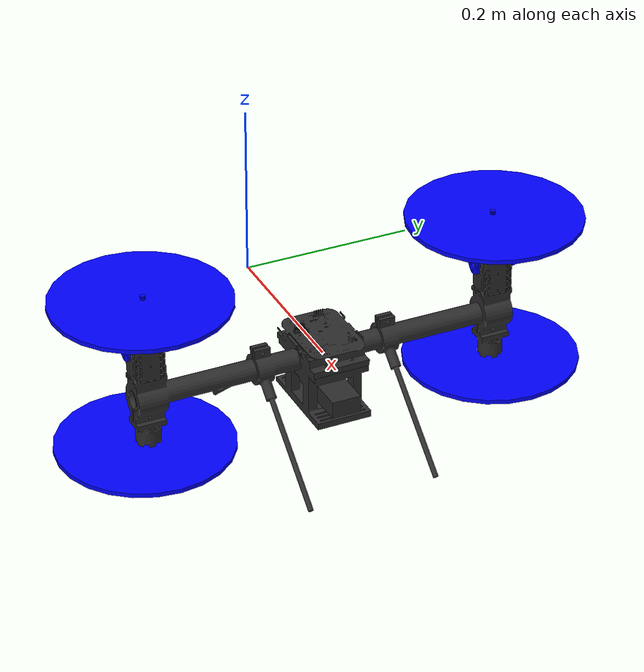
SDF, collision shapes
<?xml version="1.0" ?>
	<sdf version="1.6">
		<model name="bi_quad">
			<link name="base">
				<self_collide>false</self_collide>
				<pose>0.1993142586531725 0.0007662019443860381 0.007308524084885006 0.0 -0.0 0.0</pose>
				<inertial>
					<pose>0.0 0.0 0.0 0 0 0</pose>
					<mass>1.9525751921458985</mass>
					<inertia>
						<ixx>0.05420753138479871</ixx>
						<ixy>0.0001177924686405842</ixy>
						<ixz>6.837947817375323e-06</ixz>
						<iyy>0.0038734227472525962</iyy>
						<iyz>5.313259938331419e-05</iyz>
						<izz>0.05205338074297329</izz>
					</inertia>
				</inertial>
				<collision name="base_collision">
					<geometry>
						<mesh>
							<uri>model://bi_quad/meshes/CAD/base.stl</uri>
							<scale>0.001 0.001 0.001</scale>
						</mesh>
					</geometry>
				</collision>
				<visual name="base_visual">
					<geometry>
						<mesh>
							<uri>model://bi_quad/meshes/CAD/base.stl</uri>
							<scale>0.001 0.001 0.001</scale>
						</mesh>
					</geometry>
					<material>
						<ambient>.175 .175 .175 1.0</ambient>
						<diffuse>.175 .175 .175 1.0</diffuse>
					</material>
				</visual>
				<gravity>true</gravity>
	<velocity_decay/>
	<self_collide>0</self_collide>
		<sensor name="imu_sensor" type="imu">
			<always_on>1</always_on>
			<update_rate>250</update_rate>
			<imu>
			<angular_velocity>
			<x>
			<noise type="gaussian">
				<mean>0</mean>
				<stddev>0.0003394</stddev>
				<dynamic_bias_stddev>3.8785e-05</dynamic_bias_stddev>
				<dynamic_bias_correlation_time>1000</dynamic_bias_correlation_time>
			</noise>
			</x>
			<y>
			<noise type="gaussian">
				<mean>0</mean>
				<stddev>0.0003394</stddev>
				<dynamic_bias_stddev>3.8785e-05</dynamic_bias_stddev>
				<dynamic_bias_correlation_time>1000</dynamic_bias_correlation_time>
			</noise>
			</y>
			<z>
			<noise type="gaussian">
				<mean>0</mean>
				<stddev>0.0003394</stddev>
				<dynamic_bias_stddev>3.8785e-05</dynamic_bias_stddev>
				<dynamic_bias_correlation_time>1000</dynamic_bias_correlation_time>
			</noise>
			</z>
			</angular_velocity>
			<linear_acceleration>
			<x>
			<noise type="gaussian">
				<mean>0</mean>
				<stddev>0.004</stddev>
				<dynamic_bias_stddev>0.006</dynamic_bias_stddev>
				<dynamic_bias_correlation_time>300</dynamic_bias_correlation_time>
			</noise>
			</x>
			<y>
			<noise type="gaussian">
				<mean>0</mean>
				<stddev>0.004</stddev>
				<dynamic_bias_stddev>0.006</dynamic_bias_stddev>
				<dynamic_bias_correlation_time>300</dynamic_bias_correlation_time>
			</noise>
			</y>
			<z>
			<noise type="gaussian">
				<mean>0</mean>
				<stddev>0.004</stddev>
				<dynamic_bias_stddev>0.006</dynamic_bias_stddev>
				<dynamic_bias_correlation_time>300</dynamic_bias_correlation_time>
			</noise>
			</z>
			</linear_acceleration>
			</imu>
		</sensor>
		<sensor name="air_pressure_sensor" type="air_pressure">
			<always_on>1</always_on>
			<update_rate>50</update_rate>
			<air_pressure>
			<pressure>
			<noise type="gaussian">
			<mean>0</mean>
			<stddev>0.01</stddev>
			</noise>
			</pressure>
			</air_pressure>
		</sensor>
		<sensor name="navsat_sensor" type="navsat">
			<always_on>1</always_on>
			<update_rate>30</update_rate>
		</sensor>
			</link>

	<link name='prop1'>
	<pose>0.1970802016271777 0.210 0.11893393233816349 0.0 -0.0 0.0</pose>
	<inertial>
		<mass>0.016076923076923075</mass>
		<inertia>
		<ixx>3.8464910483993325e-07</ixx>
		<iyy>2.6115851691700804e-05</iyy>
		<izz>2.649858234714004e-05</izz>
		</inertia>
	</inertial>
	<collision name='prop1_collision'>
		<geometry>
		<cylinder>
		<length>0.005</length>
		<radius>0.1</radius>
		</cylinder>
		</geometry>
		<surface>
		<contact>
		<ode/>
		</contact>
		<friction>
		<ode/>
		</friction>
		</surface>
	</collision>
	<visual name='prop1_visual'>
		<geometry>
		<mesh>
		<scale>0.001 0.001 0.001</scale>
		<uri>model://bi_quad/meshes/CAD/Prop1.stl</uri>
		</mesh>
		</geometry>
		<material>
		<ambient>0 0 1 1.0</ambient>
		<diffuse>0 0 1 1.0</diffuse>
		</material>
	</visual>
	<gravity>true</gravity>
	<velocity_decay/>
	<self_collide>0</self_collide>
	</link>
	<joint name='prop1_joint' type='revolute'>
	<child>prop1</child>
	<parent>left_tilt</parent>
	<pose>-7.662759549274465e-08 -2.2088590501567753e-06 0.0011497181763331988 0 0 0</pose>
	<axis>
		<xyz>0 0 1</xyz>
		<limit>
		<lower>-1e+16</lower>
		<upper>1e+16</upper>
		</limit>
		<dynamics>
		<spring_reference>0</spring_reference>
		<spring_stiffness>0</spring_stiffness>
		</dynamics>
	</axis>
	</joint>

	<link name='prop2'>
      <pose>0.1970802016271777 -0.210 0.11893393233816349 0.0 -0.0 0.0</pose>
      <inertial>
        <mass>0.016076923076923075</mass>
        <inertia>
          <ixx>3.8464910483993325e-07</ixx>
          <iyy>2.6115851691700804e-05</iyy>
          <izz>2.649858234714004e-05</izz>
        </inertia>
      </inertial>
      <collision name='prop2_collision'>
        <geometry>
          <cylinder>
            <length>0.005</length>
            <radius>0.1</radius>
          </cylinder>
        </geometry>
        <surface>
          <contact>
            <ode/>
          </contact>
          <friction>
            <ode/>
          </friction>
        </surface>
      </collision>
      <visual name='prop2_visual'>
        <geometry>
          <mesh>
            <scale>0.001 0.001 0.001</scale>
            <uri>model://bi_quad/meshes/CAD/Prop2.stl</uri>
          </mesh>
        </geometry>
        <material>
          <ambient>0 0 1 1.0</ambient>
          <diffuse>0 0 1 1.0</diffuse>
        </material>
      </visual>
      <gravity>true</gravity>
      <velocity_decay/>
      <self_collide>0</self_collide>
    </link>
    <joint name='prop2_joint' type='revolute'>
      <child>prop2</child>
      <parent>right_tilt</parent>
      <pose>0.0018565808764078734 0.00021386973639528517 -0.00011891615606227482 0 0 0</pose>
      <axis>
        <xyz>0 0 1</xyz>
        <limit>
          <lower>-1e+16</lower>
          <upper>1e+16</upper>
        </limit>
        <dynamics>
          <spring_reference>0</spring_reference>
          <spring_stiffness>0</spring_stiffness>
        </dynamics>
      </axis>
    </joint>

    <link name='prop3'>
	<pose>0.1970802016271777 0.210 -0.06 0.0 -0.0 0.0</pose>
	<inertial>
		<mass>0.016076923076923075</mass>
		<inertia>
		<ixx>3.8464910483993325e-07</ixx>
		<iyy>2.6115851691700804e-05</iyy>
		<izz>2.649858234714004e-05</izz>
		</inertia>
	</inertial>
	<collision name='prop3_collision'>
		<geometry>
		<cylinder>
		<length>0.005</length>
		<radius>0.1</radius>
		</cylinder>
		</geometry>
		<surface>
		<contact>
		<ode/>
		</contact>
		<friction>
		<ode/>
		</friction>
		</surface>
	</collision>
	<visual name='prop3_visual'>
		<geometry>
		<mesh>
		<scale>0.001 0.001 0.001</scale>
		<uri>model://bi_quad/meshes/CAD/Prop1.stl</uri>
		</mesh>
		</geometry>
		<material>
		<ambient>0 0 1 1.0</ambient>
		<diffuse>0 0 1 1.0</diffuse>
		</material>
	</visual>
	<gravity>true</gravity>
	<velocity_decay/>
	<self_collide>0</self_collide>
	</link>
	<joint name='prop3_joint' type='revolute'>
	<child>prop3</child>
	<parent>base</parent>
	<pose>-7.662759549274465e-08 -2.2088590501567753e-06 0.0011497181763331988 0 0 0</pose>
	<axis>
		<xyz>0 0 1</xyz>
		<limit>
		<lower>-1e+16</lower>
		<upper>1e+16</upper>
		</limit>
		<dynamics>
		<spring_reference>0</spring_reference>
		<spring_stiffness>0</spring_stiffness>
		</dynamics>
	</axis>
	</joint>

	<link name='prop4'>
      <pose>0.1970802016271777 -0.210 -0.06 0.0 -0.0 0.0</pose>
      <inertial>
        <mass>0.016076923076923075</mass>
        <inertia>
          <ixx>3.8464910483993325e-07</ixx>
          <iyy>2.6115851691700804e-05</iyy>
          <izz>2.649858234714004e-05</izz>
        </inertia>
      </inertial>
      <collision name='prop4_collision'>
        <geometry>
          <cylinder>
            <length>0.005</length>
            <radius>0.1</radius>
          </cylinder>
        </geometry>
        <surface>
          <contact>
            <ode/>
          </contact>
          <friction>
            <ode/>
          </friction>
        </surface>
      </collision>
      <visual name='prop4_visual'>
        <geometry>
          <mesh>
            <scale>0.001 0.001 0.001</scale>
            <uri>model://bi_quad/meshes/CAD/Prop2.stl</uri>
          </mesh>
        </geometry>
        <material>
          <ambient>0 0 1 1.0</ambient>
          <diffuse>0 0 1 1.0</diffuse>
        </material>
      </visual>
      <gravity>true</gravity>
      <velocity_decay/>
      <self_collide>0</self_collide>
    </link>
    <joint name='prop4_joint' type='revolute'>
      <child>prop4</child>
      <parent>base</parent>
      <pose>0.0018565808764078734 0.00021386973639528517 -0.00011891615606227482 0 0 0</pose>
      <axis>
        <xyz>0 0 1</xyz>
        <limit>
          <lower>-1e+16</lower>
          <upper>1e+16</upper>
        </limit>
        <dynamics>
          <spring_reference>0</spring_reference>
          <spring_stiffness>0</spring_stiffness>
        </dynamics>
      </axis>
    </joint>

			<link name="left_tilt">
				<self_collide>false</self_collide>
				<pose>0.1970802016271777 0.20867943375924966 0.0903633202468961 0.0 -0.0 0.0</pose>
				<inertial>
					<pose>0.0 0.0 0.0 0 0 0</pose>
					<mass>0.11178225346146682</mass>
					<inertia>
						<ixx>4.599569507079622e-05</ixx>
						<ixy>3.4183955813915646e-08</ixy>
						<ixz>1.3992897841678344e-06</ixz>
						<iyy>3.055340095657755e-05</iyy>
						<iyz>-4.072897203190706e-07</iyz>
						<izz>2.7747241743645647e-05</izz>
					</inertia>
				</inertial>
				<collision name="left_tilt_collision">
					<geometry>
						<mesh>
							<uri>model://bi_quad/meshes/CAD/left_tilt.stl</uri>
							<scale>0.001 0.001 0.001</scale>
						</mesh>
					</geometry>
				</collision>
				<visual name="left_tilt_visual">
					<geometry>
						<mesh>
							<uri>model://bi_quad/meshes/CAD/left_tilt.stl</uri>
							<scale>0.001 0.001 0.001</scale>
						</mesh>
					</geometry>
					<material>
						<ambient>0 0 1 1.0</ambient>
						<diffuse>0 0 1 1.0</diffuse>
					</material>
				</visual>
			</link>
			<link name="right_tilt">
				<self_collide>false</self_collide>
				<pose>0.1988358901875466 -0.20757372230526244 0.09038961426123086 0.0 -0.0 0.0</pose>
				<inertial>
					<pose>0.0 0.0 0.0 0 0 0</pose>
					<mass>0.11178225346146678</mass>
					<inertia>
						<ixx>4.605310565699767e-05</ixx>
						<ixy>1.4271970499635245e-09</ixy>
						<ixz>6.437483614664786e-07</ixz>
						<iyy>3.0533776883067535e-05</iyy>
						<iyz>-4.153988905954975e-08</iyz>
						<izz>2.7648072299791693e-05</izz>
					</inertia>
				</inertial>
				<collision name="right_tilt_collision">
					<geometry>
						<mesh>
							<uri>model://bi_quad/meshes/CAD/right_tilt.stl</uri>
							<scale>0.001 0.001 0.001</scale>
						</mesh>
					</geometry>
				</collision>
				<visual name="right_tilt_visual">
					<geometry>
						<mesh>
							<uri>model://bi_quad/meshes/CAD/right_tilt.stl</uri>
							<scale>0.001 0.001 0.001</scale>
						</mesh>
					</geometry>
					<material>
						<ambient>0 0 1 1.0</ambient>
						<diffuse>0 0 1 1.0</diffuse>
					</material>
				</visual>
			</link>
			<joint name="left_joint" type="revolute">
				<parent>base</parent>
				<child>left_tilt</child>
				<pose>0.0016285265354841272 -0.021312948760055832 -0.026363320246896197 0 0 0</pose>
				<axis>
					<xyz>0 -1 0</xyz>
					<limit>
						<lower>-0.7853981633974483</lower>
						<upper>0.7853981633974483</upper>
					</limit>
					<dynamics>
          				<damping>0.1</damping>
        				</dynamics>
				</axis>
				<physics>
					<ode>
					<implicit_spring_damper>0</implicit_spring_damper>
					</ode>
				</physics>

			</joint>
			<joint name="right_joint" type="revolute">
				<parent>base</parent>
				<child>right_tilt</child>
				<pose>0.0010467769884695954 -0.021032214828628142 -0.026389614261231122 0 0 0</pose>
				<axis>
					<xyz>0 -1 0</xyz>
					<limit>
						<lower>-0.7853981633974483</lower>
						<upper>0.7853981633974483</upper>
					</limit>
					<dynamics>
          				<damping>0.1</damping>
        				</dynamics>
				</axis>
				<physics>
					<ode>
					<implicit_spring_damper>0</implicit_spring_damper>
					</ode>
				</physics>
			</joint>

	<plugin filename="gz-sim-lift-drag-system" name="gz::sim::systems::LiftDrag">
	<a0>0.05984281113</a0>
	<cla>4.752798721</cla>
	<cda>0.6417112299</cda>
	<cma>0.0</cma>
	<alpha_stall>0.3391428111</alpha_stall>
	<cla_stall>-3.85</cla_stall>
	<cda_stall>-0.9233984055</cda_stall>
	<cma_stall>0</cma_stall>
	<cp>-0.05 0.3 0.05</cp>
	<area>0.50</area>
	<air_density>1.2041</air_density>
	<forward>1 0 0</forward>
	<upward>0 0 1</upward>
	<link_name>base</link_name>
	<control_joint_name>left_joint</control_joint_name>
	<control_joint_rad_to_cl>-1.0</control_joint_rad_to_cl>
	</plugin>
	<plugin
	filename="gz-sim-joint-position-controller-system" name="gz::sim::systems::JointPositionController">
	<joint_name>left_joint</joint_name>
	<sub_topic>left_joint</sub_topic>
	</plugin>

    <plugin filename="gz-sim-lift-drag-system" name="gz::sim::systems::LiftDrag">
      <a0>0.05984281113</a0>
      <cla>4.752798721</cla>
      <cda>0.6417112299</cda>
      <cma>0.0</cma>
      <alpha_stall>0.3391428111</alpha_stall>
      <cla_stall>-3.85</cla_stall>
      <cda_stall>-0.9233984055</cda_stall>
      <cma_stall>0</cma_stall>
      <cp>-0.05 -0.3 0.05</cp>
      <area>0.50</area>
      <air_density>1.2041</air_density>
      <forward>1 0 0</forward>
      <upward>0 0 1</upward>
      <link_name>base</link_name>
      <control_joint_name>right_joint</control_joint_name>
      <control_joint_rad_to_cl>-1.0</control_joint_rad_to_cl>
    </plugin>
    <plugin
      filename="gz-sim-joint-position-controller-system" name="gz::sim::systems::JointPositionController">
      <joint_name>right_joint</joint_name>
      <sub_topic>right_joint</sub_topic>
    </plugin>

    <plugin filename="gz-sim-multicopter-motor-model-system" name="gz::sim::systems::MulticopterMotorModel">
      <jointName>prop1_joint</jointName>
      <linkName>prop1</linkName>
      <turningDirection>ccw</turningDirection>
      <timeConstantUp>0.0125</timeConstantUp>
      <timeConstantDown>0.025</timeConstantDown>
      <maxRotVelocity>1000</maxRotVelocity>
      <motorConstant>8.54858e-06</motorConstant>
      <momentConstant>0.016</momentConstant>
      <commandSubTopic>command/motor_speed</commandSubTopic>
      <motorNumber>0</motorNumber>
      <rotorDragCoefficient>8.06428e-05</rotorDragCoefficient>
      <rollingMomentCoefficient>1e-06</rollingMomentCoefficient>
      <rotorVelocitySlowdownSim>10</rotorVelocitySlowdownSim>
      <motorType>velocity</motorType>
    </plugin>

    <plugin filename="gz-sim-multicopter-motor-model-system" name="gz::sim::systems::MulticopterMotorModel">
      <jointName>prop2_joint</jointName>
      <linkName>prop2</linkName>
      <turningDirection>cw</turningDirection>
      <timeConstantUp>0.0125</timeConstantUp>
      <timeConstantDown>0.025</timeConstantDown>
      <maxRotVelocity>1000</maxRotVelocity>
      <motorConstant>8.54858e-06</motorConstant>
      <momentConstant>0.016</momentConstant>
      <commandSubTopic>command/motor_speed</commandSubTopic>
      <motorNumber>1</motorNumber>
      <rotorDragCoefficient>8.06428e-05</rotorDragCoefficient>
      <rollingMomentCoefficient>1e-06</rollingMomentCoefficient>
      <rotorVelocitySlowdownSim>10</rotorVelocitySlowdownSim>
      <motorType>velocity</motorType>
    </plugin>

    <plugin filename="gz-sim-multicopter-motor-model-system" name="gz::sim::systems::MulticopterMotorModel">
      <jointName>prop3_joint</jointName>
      <linkName>prop3</linkName>
      <turningDirection>ccw</turningDirection>
      <timeConstantUp>0.0125</timeConstantUp>
      <timeConstantDown>0.025</timeConstantDown>
      <maxRotVelocity>1000</maxRotVelocity>
      <motorConstant>8.54858e-06</motorConstant>
      <momentConstant>0.016</momentConstant>
      <commandSubTopic>command/motor_speed</commandSubTopic>
      <motorNumber>2</motorNumber>
      <rotorDragCoefficient>8.06428e-05</rotorDragCoefficient>
      <rollingMomentCoefficient>1e-06</rollingMomentCoefficient>
      <rotorVelocitySlowdownSim>10</rotorVelocitySlowdownSim>
      <motorType>velocity</motorType>
    </plugin>

    <plugin filename="gz-sim-multicopter-motor-model-system" name="gz::sim::systems::MulticopterMotorModel">
      <jointName>prop4_joint</jointName>
      <linkName>prop4</linkName>
      <turningDirection>cw</turningDirection>
      <timeConstantUp>0.0125</timeConstantUp>
      <timeConstantDown>0.025</timeConstantDown>
      <maxRotVelocity>1000</maxRotVelocity>
      <motorConstant>8.54858e-06</motorConstant>
      <momentConstant>0.016</momentConstant>
      <commandSubTopic>command/motor_speed</commandSubTopic>
      <motorNumber>3</motorNumber>
      <rotorDragCoefficient>8.06428e-05</rotorDragCoefficient>
      <rollingMomentCoefficient>1e-06</rollingMomentCoefficient>
      <rotorVelocitySlowdownSim>10</rotorVelocitySlowdownSim>
      <motorType>velocity</motorType>
    </plugin>

			<static>0</static>
		</model>
	</sdf>
